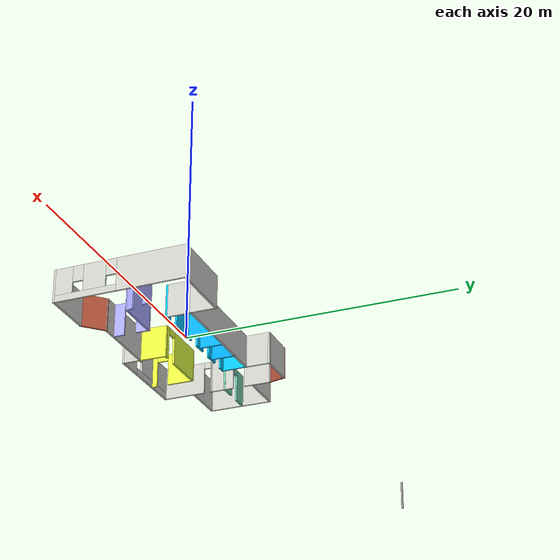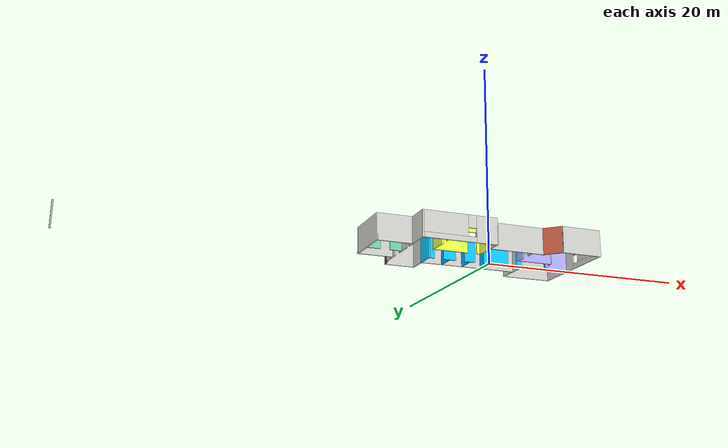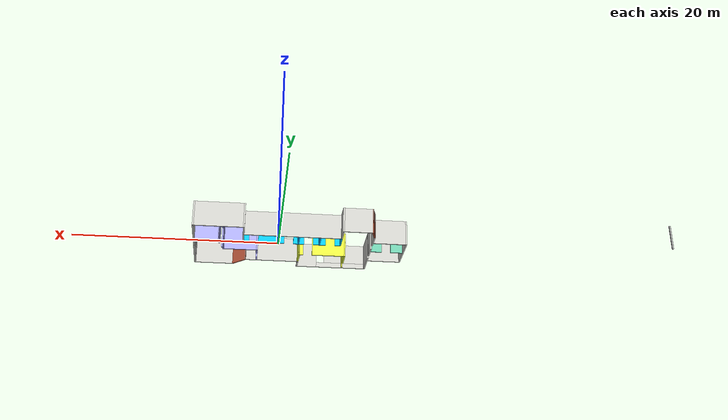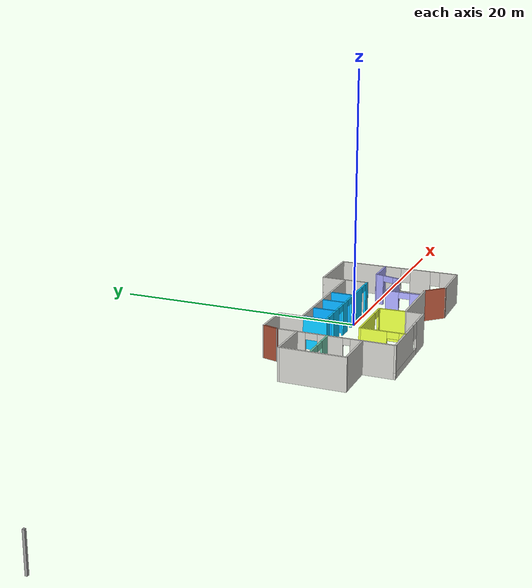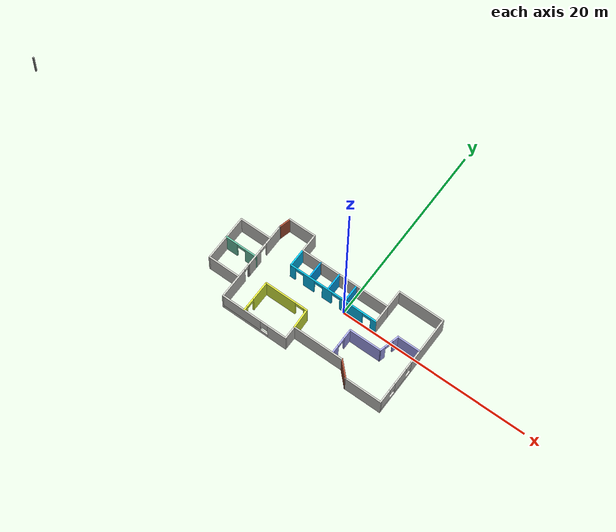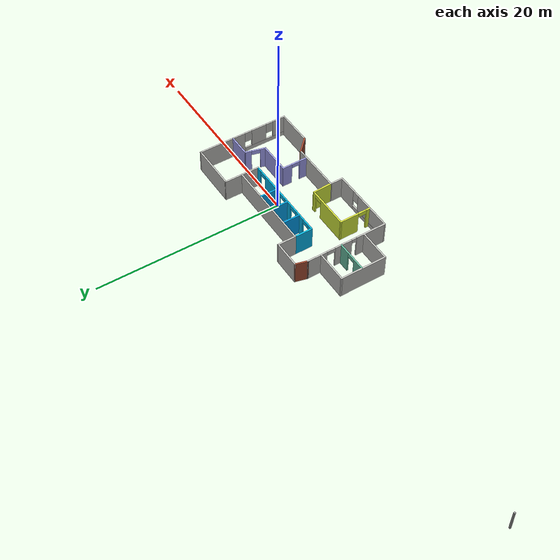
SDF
<?xml version='1.0'?>
<sdf version='1.6'>
  <model name='Building'>
    <pose frame=''>-15.5554 -1.11535 0 0 -0 0</pose>
    <link name='Wall_10'>
      <collision name='Wall_10_Collision'>
        <geometry>
          <box>
            <size>4 0.15 2.5</size>
          </box>
        </geometry>
        <pose frame=''>0 0 1.25 0 -0 0</pose>
      </collision>
      <visual name='Wall_10_Visual'>
        <pose frame=''>0 0 1.25 0 -0 0</pose>
        <geometry>
          <box>
            <size>4 0.15 2.5</size>
          </box>
        </geometry>
        <material>
          <script>
            <uri>file://media/materials/scripts/gazebo.material</uri>
            <name>Gazebo/CeilingTiled</name>
          </script>
          <ambient>1 1 1 1</ambient>
        </material>
        <meta>
          <layer>0</layer>
        </meta>
      </visual>
      <pose frame=''>21.9406 -4.91227 0 0 -0 3.14159</pose>
    </link>
    <link name='Wall_11'>
      <collision name='Wall_11_Collision'>
        <geometry>
          <box>
            <size>2 0.15 2.5</size>
          </box>
        </geometry>
        <pose frame=''>0 0 1.25 0 -0 0</pose>
      </collision>
      <visual name='Wall_11_Visual'>
        <pose frame=''>0 0 1.25 0 -0 0</pose>
        <geometry>
          <box>
            <size>2 0.15 2.5</size>
          </box>
        </geometry>
        <material>
          <script>
            <uri>file://media/materials/scripts/gazebo.material</uri>
            <name>Gazebo/Bricks</name>
          </script>
          <ambient>1 1 1 1</ambient>
        </material>
        <meta>
          <layer>0</layer>
        </meta>
      </visual>
      <pose frame=''>19.3615 -4.25819 0 0 -0 2.35619</pose>
    </link>
    <link name='Wall_12'>
      <collision name='Wall_12_Collision'>
        <geometry>
          <box>
            <size>5.5 0.15 2.5</size>
          </box>
        </geometry>
        <pose frame=''>0 0 1.25 0 -0 0</pose>
      </collision>
      <visual name='Wall_12_Visual'>
        <pose frame=''>0 0 1.25 0 -0 0</pose>
        <geometry>
          <box>
            <size>5.5 0.15 2.5</size>
          </box>
        </geometry>
        <material>
          <script>
            <uri>file://media/materials/scripts/gazebo.material</uri>
            <name>Gazebo/CeilingTiled</name>
          </script>
          <ambient>1 1 1 1</ambient>
        </material>
        <meta>
          <layer>0</layer>
        </meta>
      </visual>
      <pose frame=''>16.0324 -3.60412 0 0 -0 3.14159</pose>
    </link>
    <link name='Wall_13'>
      <collision name='Wall_13_Collision'>
        <geometry>
          <box>
            <size>1.5 0.15 2.5</size>
          </box>
        </geometry>
        <pose frame=''>0 0 1.25 0 -0 0</pose>
      </collision>
      <visual name='Wall_13_Visual'>
        <pose frame=''>0 0 1.25 0 -0 0</pose>
        <geometry>
          <box>
            <size>1.5 0.15 2.5</size>
          </box>
        </geometry>
        <material>
          <script>
            <uri>file://media/materials/scripts/gazebo.material</uri>
            <name>Gazebo/CeilingTiled</name>
          </script>
          <ambient>0.901961 1 0.254902 1</ambient>
        </material>
        <meta>
          <layer>0</layer>
        </meta>
      </visual>
      <pose frame=''>13.3574 -4.27912 0 0 0 -1.5708</pose>
    </link>
    <link name='Wall_14'>
      <pose frame=''>9.80745 -4.95412 0 0 -0 3.14159</pose>
      <visual name='Wall_14_Visual_0'>
        <pose frame=''>-2.58123 0 1.25 0 -0 0</pose>
        <geometry>
          <box>
            <size>2.08753 0.15 2.5</size>
          </box>
        </geometry>
        <material>
          <script>
            <uri>file://media/materials/scripts/gazebo.material</uri>
            <name>Gazebo/CeilingTiled</name>
          </script>
          <ambient>1 1 1 1</ambient>
        </material>
        <meta>
          <layer>0</layer>
        </meta>
      </visual>
      <collision name='Wall_14_Collision_0'>
        <geometry>
          <box>
            <size>2.08753 0.15 2.5</size>
          </box>
        </geometry>
        <pose frame=''>-2.58123 0 1.25 0 -0 0</pose>
      </collision>
      <visual name='Wall_14_Visual_1'>
        <pose frame=''>1.04377 0 0.25 0 -0 0</pose>
        <geometry>
          <box>
            <size>5.16247 0.15 0.5</size>
          </box>
        </geometry>
        <material>
          <script>
            <uri>file://media/materials/scripts/gazebo.material</uri>
            <name>Gazebo/CeilingTiled</name>
          </script>
          <ambient>1 1 1 1</ambient>
        </material>
        <meta>
          <layer>0</layer>
        </meta>
      </visual>
      <collision name='Wall_14_Collision_1'>
        <geometry>
          <box>
            <size>5.16247 0.15 0.5</size>
          </box>
        </geometry>
        <pose frame=''>1.04377 0 0.25 0 -0 0</pose>
      </collision>
      <visual name='Wall_14_Visual_2'>
        <pose frame=''>1.44377 0 1.5 0 -0 0</pose>
        <geometry>
          <box>
            <size>4.36247 0.15 2</size>
          </box>
        </geometry>
        <material>
          <script>
            <uri>file://media/materials/scripts/gazebo.material</uri>
            <name>Gazebo/CeilingTiled</name>
          </script>
          <ambient>1 1 1 1</ambient>
        </material>
        <meta>
          <layer>0</layer>
        </meta>
      </visual>
      <collision name='Wall_14_Collision_2'>
        <geometry>
          <box>
            <size>4.36247 0.15 2</size>
          </box>
        </geometry>
        <pose frame=''>1.44377 0 1.5 0 -0 0</pose>
      </collision>
      <visual name='Wall_14_Visual_3'>
        <pose frame=''>-1.13747 0 1.9 0 -0 0</pose>
        <geometry>
          <box>
            <size>0.8 0.15 1.2</size>
          </box>
        </geometry>
        <material>
          <script>
            <uri>file://media/materials/scripts/gazebo.material</uri>
            <name>Gazebo/CeilingTiled</name>
          </script>
          <ambient>1 1 1 1</ambient>
        </material>
        <meta>
          <layer>0</layer>
        </meta>
      </visual>
      <collision name='Wall_14_Collision_3'>
        <geometry>
          <box>
            <size>0.8 0.15 1.2</size>
          </box>
        </geometry>
        <pose frame=''>-1.13747 0 1.9 0 -0 0</pose>
      </collision>
    </link>
    <link name='Wall_15'>
      <pose frame=''>6.25745 -3.02912 0 0 -0 1.5708</pose>
      <visual name='Wall_15_Visual_0'>
        <pose frame=''>-0.337699 0 1.25 0 -0 0</pose>
        <geometry>
          <box>
            <size>3.3246 0.15 2.5</size>
          </box>
        </geometry>
        <material>
          <script>
            <uri>file://media/materials/scripts/gazebo.material</uri>
            <name>Gazebo/CeilingTiled</name>
          </script>
          <ambient>0.435294 0.796078 0.67451 1</ambient>
        </material>
        <meta>
          <layer>0</layer>
        </meta>
      </visual>
      <collision name='Wall_15_Collision_0'>
        <geometry>
          <box>
            <size>3.3246 0.15 2.5</size>
          </box>
        </geometry>
        <pose frame=''>-0.337699 0 1.25 0 -0 0</pose>
      </collision>
      <visual name='Wall_15_Visual_1'>
        <pose frame=''>1.6623 0 2.25 0 -0 0</pose>
        <geometry>
          <box>
            <size>0.675399 0.15 0.5</size>
          </box>
        </geometry>
        <material>
          <script>
            <uri>file://media/materials/scripts/gazebo.material</uri>
            <name>Gazebo/CeilingTiled</name>
          </script>
          <ambient>0.435294 0.796078 0.67451 1</ambient>
        </material>
        <meta>
          <layer>0</layer>
        </meta>
      </visual>
      <collision name='Wall_15_Collision_1'>
        <geometry>
          <box>
            <size>0.675399 0.15 0.5</size>
          </box>
        </geometry>
        <pose frame=''>1.6623 0 2.25 0 -0 0</pose>
      </collision>
    </link>
    <link name='Wall_19'>
      <collision name='Wall_19_Collision'>
        <geometry>
          <box>
            <size>0.15 0.15 2.5</size>
          </box>
        </geometry>
        <pose frame=''>0 0 1.25 0 -0 0</pose>
      </collision>
      <visual name='Wall_19_Visual'>
        <pose frame=''>0 0 1.25 0 -0 0</pose>
        <geometry>
          <box>
            <size>0.15 0.15 2.5</size>
          </box>
        </geometry>
        <material>
          <script>
            <uri>file://media/materials/scripts/gazebo.material</uri>
            <name>Gazebo/Grey</name>
          </script>
          <ambient>1 1 1 1</ambient>
        </material>
        <meta>
          <layer>0</layer>
        </meta>
      </visual>
      <pose frame=''>6.25745 3.74588 0 0 -0 0</pose>
    </link>
    <link name='Wall_24'>
      <collision name='Wall_24_Collision'>
        <geometry>
          <box>
            <size>0.15 0.15 2.5</size>
          </box>
        </geometry>
        <pose frame=''>0 0 1.25 0 -0 0</pose>
      </collision>
      <visual name='Wall_24_Visual'>
        <pose frame=''>0 0 1.25 0 -0 0</pose>
        <geometry>
          <box>
            <size>0.15 0.15 2.5</size>
          </box>
        </geometry>
        <material>
          <script>
            <uri>file://media/materials/scripts/gazebo.material</uri>
            <name>Gazebo/Grey</name>
          </script>
          <ambient>1 1 1 1</ambient>
        </material>
        <meta>
          <layer>0</layer>
        </meta>
      </visual>
      <pose frame=''>-23.8656 4.2525 0 0 -0 0</pose>
    </link>
    <link name='Wall_26'>
      <collision name='Wall_26_Collision'>
        <geometry>
          <box>
            <size>3 0.15 2.5</size>
          </box>
        </geometry>
        <pose frame=''>0 0 1.25 0 -0 0</pose>
      </collision>
      <visual name='Wall_26_Visual'>
        <pose frame=''>0 0 1.25 0 -0 0</pose>
        <geometry>
          <box>
            <size>3 0.15 2.5</size>
          </box>
        </geometry>
        <material>
          <script>
            <uri>file://media/materials/scripts/gazebo.material</uri>
            <name>Gazebo/CeilingTiled</name>
          </script>
          <ambient>0.435294 0.796078 0.67451 1</ambient>
        </material>
        <meta>
          <layer>0</layer>
        </meta>
      </visual>
      <pose frame=''>7.99059 4.93773 0 0 -0 3.14159</pose>
    </link>
    <link name='Wall_27'>
      <collision name='Wall_27_Collision'>
        <geometry>
          <box>
            <size>1.38104 0.15 2.5</size>
          </box>
        </geometry>
        <pose frame=''>0 0 1.25 0 -0 0</pose>
      </collision>
      <visual name='Wall_27_Visual'>
        <pose frame=''>0 0 1.25 0 -0 0</pose>
        <geometry>
          <box>
            <size>1.38104 0.15 2.5</size>
          </box>
        </geometry>
        <material>
          <script>
            <uri>file://media/materials/scripts/gazebo.material</uri>
            <name>Gazebo/Bricks</name>
          </script>
          <ambient>0.435294 0.796078 0.67451 1</ambient>
        </material>
        <meta>
          <layer>0</layer>
        </meta>
      </visual>
      <pose frame=''>6.41152 4.34181 0 0 0 -1.8238</pose>
    </link>
    <link name='Wall_28'>
      <collision name='Wall_28_Collision'>
        <geometry>
          <box>
            <size>0.16 0.15 2.5</size>
          </box>
        </geometry>
        <pose frame=''>0 0 1.25 0 -0 0</pose>
      </collision>
      <visual name='Wall_28_Visual'>
        <pose frame=''>0 0 1.25 0 -0 0</pose>
        <geometry>
          <box>
            <size>0.16 0.15 2.5</size>
          </box>
        </geometry>
        <material>
          <script>
            <uri>file://media/materials/scripts/gazebo.material</uri>
            <name>Gazebo/Grey</name>
          </script>
          <ambient>1 1 1 1</ambient>
        </material>
        <meta>
          <layer>0</layer>
        </meta>
      </visual>
      <pose frame=''>6.26245 3.74588 0 0 -0 0</pose>
    </link>
    <link name='Wall_3'>
      <collision name='Wall_3_Collision'>
        <geometry>
          <box>
            <size>2.00019 0.15 2.5</size>
          </box>
        </geometry>
        <pose frame=''>0 0 1.25 0 -0 0</pose>
      </collision>
      <visual name='Wall_3_Visual'>
        <pose frame=''>0 0 1.25 0 -0 0</pose>
        <geometry>
          <box>
            <size>2.00019 0.15 2.5</size>
          </box>
        </geometry>
        <material>
          <script>
            <uri>file://media/materials/scripts/gazebo.material</uri>
            <name>Gazebo/CeilingTiled</name>
          </script>
          <ambient>1 1 1 1</ambient>
        </material>
        <meta>
          <layer>0</layer>
        </meta>
      </visual>
      <pose frame=''>9.41559 4.01273 0 0 0 -1.5708</pose>
    </link>
    <link name='Wall_30'>
      <pose frame=''>6.25745 1.32088 0 0 0 -1.5708</pose>
      <visual name='Wall_30_Visual_0'>
        <pose frame=''>-1.39411 0 1.25 0 -0 0</pose>
        <geometry>
          <box>
            <size>2.21177 0.15 2.5</size>
          </box>
        </geometry>
        <material>
          <script>
            <uri>file://media/materials/scripts/gazebo.material</uri>
            <name>Gazebo/CeilingTiled</name>
          </script>
          <ambient>0.435294 0.796078 0.67451 1</ambient>
        </material>
        <meta>
          <layer>0</layer>
        </meta>
      </visual>
      <collision name='Wall_30_Collision_0'>
        <geometry>
          <box>
            <size>2.21177 0.15 2.5</size>
          </box>
        </geometry>
        <pose frame=''>-1.39411 0 1.25 0 -0 0</pose>
      </collision>
      <visual name='Wall_30_Visual_1'>
        <pose frame=''>1.55588 0 1.25 0 -0 0</pose>
        <geometry>
          <box>
            <size>1.88823 0.15 2.5</size>
          </box>
        </geometry>
        <material>
          <script>
            <uri>file://media/materials/scripts/gazebo.material</uri>
            <name>Gazebo/CeilingTiled</name>
          </script>
          <ambient>0.435294 0.796078 0.67451 1</ambient>
        </material>
        <meta>
          <layer>0</layer>
        </meta>
      </visual>
      <collision name='Wall_30_Collision_1'>
        <geometry>
          <box>
            <size>1.88823 0.15 2.5</size>
          </box>
        </geometry>
        <pose frame=''>1.55588 0 1.25 0 -0 0</pose>
      </collision>
      <visual name='Wall_30_Visual_2'>
        <pose frame=''>0.16177 0 2.25 0 -0 0</pose>
        <geometry>
          <box>
            <size>0.9 0.15 0.5</size>
          </box>
        </geometry>
        <material>
          <script>
            <uri>file://media/materials/scripts/gazebo.material</uri>
            <name>Gazebo/CeilingTiled</name>
          </script>
          <ambient>0.435294 0.796078 0.67451 1</ambient>
        </material>
        <meta>
          <layer>0</layer>
        </meta>
      </visual>
      <collision name='Wall_30_Collision_2'>
        <geometry>
          <box>
            <size>0.9 0.15 0.5</size>
          </box>
        </geometry>
        <pose frame=''>0.16177 0 2.25 0 -0 0</pose>
      </collision>
    </link>
    <link name='Wall_31'>
      <collision name='Wall_31_Collision'>
        <geometry>
          <box>
            <size>0.15 0.15 2.5</size>
          </box>
        </geometry>
        <pose frame=''>0 0 1.25 0 -0 0</pose>
      </collision>
      <visual name='Wall_31_Visual'>
        <pose frame=''>0 0 1.25 0 -0 0</pose>
        <geometry>
          <box>
            <size>0.15 0.15 2.5</size>
          </box>
        </geometry>
        <material>
          <script>
            <uri>file://media/materials/scripts/gazebo.material</uri>
            <name>Gazebo/Grey</name>
          </script>
          <ambient>1 1 1 1</ambient>
        </material>
        <meta>
          <layer>0</layer>
        </meta>
      </visual>
      <pose frame=''>6.25745 -1.10412 0 0 -0 0</pose>
    </link>
    <link name='Wall_4'>
      <collision name='Wall_4_Collision'>
        <geometry>
          <box>
            <size>9.75 0.15 2.5</size>
          </box>
        </geometry>
        <pose frame=''>0 0 1.25 0 -0 0</pose>
      </collision>
      <visual name='Wall_4_Visual'>
        <pose frame=''>0 0 1.25 0 -0 0</pose>
        <geometry>
          <box>
            <size>9.75 0.15 2.5</size>
          </box>
        </geometry>
        <material>
          <script>
            <uri>file://media/materials/scripts/gazebo.material</uri>
            <name>Gazebo/CeilingTiled</name>
          </script>
          <ambient>0.0196078 0.690196 1 1</ambient>
        </material>
        <meta>
          <layer>0</layer>
        </meta>
      </visual>
      <pose frame=''>14.2156 3.08773 0 0 -0 0</pose>
    </link>
    <link name='Wall_40'>
      <collision name='Wall_40_Collision'>
        <geometry>
          <box>
            <size>3.5 0.15 2.5</size>
          </box>
        </geometry>
        <pose frame=''>0 0 1.25 0 -0 0</pose>
      </collision>
      <visual name='Wall_40_Visual'>
        <pose frame=''>0 0 1.25 0 -0 0</pose>
        <geometry>
          <box>
            <size>3.5 0.15 2.5</size>
          </box>
        </geometry>
        <material>
          <script>
            <uri>file://media/materials/scripts/gazebo.material</uri>
            <name>Gazebo/CeilingTiled</name>
          </script>
          <ambient>0.435294 0.796078 0.67451 1</ambient>
        </material>
        <meta>
          <layer>0</layer>
        </meta>
      </visual>
      <pose frame=''>4.56509 2.27847 0 0 -0 3.14159</pose>
    </link>
    <link name='Wall_41'>
      <collision name='Wall_41_Collision'>
        <geometry>
          <box>
            <size>5 0.15 2.5</size>
          </box>
        </geometry>
        <pose frame=''>0 0 1.25 0 -0 0</pose>
      </collision>
      <visual name='Wall_41_Visual'>
        <pose frame=''>0 0 1.25 0 -0 0</pose>
        <geometry>
          <box>
            <size>5 0.15 2.5</size>
          </box>
        </geometry>
        <material>
          <script>
            <uri>file://media/materials/scripts/gazebo.material</uri>
            <name>Gazebo/CeilingTiled</name>
          </script>
          <ambient>1 1 1 1</ambient>
        </material>
        <meta>
          <layer>0</layer>
        </meta>
      </visual>
      <pose frame=''>2.89009 -0.146525 0 0 0 -1.5708</pose>
    </link>
    <link name='Wall_42'>
      <collision name='Wall_42_Collision'>
        <geometry>
          <box>
            <size>3.5 0.15 2.5</size>
          </box>
        </geometry>
        <pose frame=''>0 0 1.25 0 -0 0</pose>
      </collision>
      <visual name='Wall_42_Visual'>
        <pose frame=''>0 0 1.25 0 -0 0</pose>
        <geometry>
          <box>
            <size>3.5 0.15 2.5</size>
          </box>
        </geometry>
        <material>
          <script>
            <uri>file://media/materials/scripts/gazebo.material</uri>
            <name>Gazebo/CeilingTiled</name>
          </script>
          <ambient>0.435294 0.796078 0.67451 1</ambient>
        </material>
        <meta>
          <layer>0</layer>
        </meta>
      </visual>
      <pose frame=''>4.56509 -2.57152 0 0 -0 0</pose>
    </link>
    <link name='Wall_44'>
      <pose frame=''>4.59198 0.004767 0 0 -0 0</pose>
      <visual name='Wall_44_Visual_0'>
        <pose frame=''>-1.08923 0 1.25 0 -0 0</pose>
        <geometry>
          <box>
            <size>1.32154 0.15 2.5</size>
          </box>
        </geometry>
        <material>
          <script>
            <uri>file://media/materials/scripts/gazebo.material</uri>
            <name>Gazebo/Grey</name>
          </script>
          <ambient>0.435294 0.796078 0.67451 1</ambient>
        </material>
        <meta>
          <layer>0</layer>
        </meta>
      </visual>
      <collision name='Wall_44_Collision_0'>
        <geometry>
          <box>
            <size>1.32154 0.15 2.5</size>
          </box>
        </geometry>
        <pose frame=''>-1.08923 0 1.25 0 -0 0</pose>
      </collision>
      <visual name='Wall_44_Visual_1'>
        <pose frame=''>1.11077 0 1.25 0 -0 0</pose>
        <geometry>
          <box>
            <size>1.27846 0.15 2.5</size>
          </box>
        </geometry>
        <material>
          <script>
            <uri>file://media/materials/scripts/gazebo.material</uri>
            <name>Gazebo/Grey</name>
          </script>
          <ambient>0.435294 0.796078 0.67451 1</ambient>
        </material>
        <meta>
          <layer>0</layer>
        </meta>
      </visual>
      <collision name='Wall_44_Collision_1'>
        <geometry>
          <box>
            <size>1.27846 0.15 2.5</size>
          </box>
        </geometry>
        <pose frame=''>1.11077 0 1.25 0 -0 0</pose>
      </collision>
      <visual name='Wall_44_Visual_2'>
        <pose frame=''>0.021536 0 2.25 0 -0 0</pose>
        <geometry>
          <box>
            <size>0.9 0.15 0.5</size>
          </box>
        </geometry>
        <material>
          <script>
            <uri>file://media/materials/scripts/gazebo.material</uri>
            <name>Gazebo/Grey</name>
          </script>
          <ambient>0.435294 0.796078 0.67451 1</ambient>
        </material>
        <meta>
          <layer>0</layer>
        </meta>
      </visual>
      <collision name='Wall_44_Collision_2'>
        <geometry>
          <box>
            <size>0.9 0.15 0.5</size>
          </box>
        </geometry>
        <pose frame=''>0.021536 0 2.25 0 -0 0</pose>
      </collision>
    </link>
    <link name='Wall_46'>
      <collision name='Wall_46_Collision'>
        <geometry>
          <box>
            <size>2 0.15 2.5</size>
          </box>
        </geometry>
        <pose frame=''>0 0 1.25 0 -0 0</pose>
      </collision>
      <visual name='Wall_46_Visual'>
        <pose frame=''>0 0 1.25 0 -0 0</pose>
        <geometry>
          <box>
            <size>2 0.15 2.5</size>
          </box>
        </geometry>
        <material>
          <script>
            <uri>file://media/materials/scripts/gazebo.material</uri>
            <name>Gazebo/Grey</name>
          </script>
          <ambient>0.0313726 0.776471 1 1</ambient>
        </material>
        <meta>
          <layer>0</layer>
        </meta>
      </visual>
      <pose frame=''>9.41559 2.16273 0 0 0 -1.5708</pose>
    </link>
    <link name='Wall_47'>
      <pose frame=''>14.2156 1.23773 0 0 -0 0</pose>
      <visual name='Wall_47_Visual_0'>
        <pose frame=''>-4.56019 0 1.25 0 -0 0</pose>
        <geometry>
          <box>
            <size>0.629619 0.15 2.5</size>
          </box>
        </geometry>
        <material>
          <script>
            <uri>file://media/materials/scripts/gazebo.material</uri>
            <name>Gazebo/Grey</name>
          </script>
          <ambient>0.0313726 0.776471 1 1</ambient>
        </material>
        <meta>
          <layer>0</layer>
        </meta>
      </visual>
      <collision name='Wall_47_Collision_0'>
        <geometry>
          <box>
            <size>0.629619 0.15 2.5</size>
          </box>
        </geometry>
        <pose frame=''>-4.56019 0 1.25 0 -0 0</pose>
      </collision>
      <visual name='Wall_47_Visual_1'>
        <pose frame=''>-2.72849 0 1.25 0 -0 0</pose>
        <geometry>
          <box>
            <size>1.23379 0.15 2.5</size>
          </box>
        </geometry>
        <material>
          <script>
            <uri>file://media/materials/scripts/gazebo.material</uri>
            <name>Gazebo/Grey</name>
          </script>
          <ambient>0.0313726 0.776471 1 1</ambient>
        </material>
        <meta>
          <layer>0</layer>
        </meta>
      </visual>
      <collision name='Wall_47_Collision_1'>
        <geometry>
          <box>
            <size>1.23379 0.15 2.5</size>
          </box>
        </geometry>
        <pose frame=''>-2.72849 0 1.25 0 -0 0</pose>
      </collision>
      <visual name='Wall_47_Visual_2'>
        <pose frame=''>-0.673405 0 1.25 0 -0 0</pose>
        <geometry>
          <box>
            <size>1.07638 0.15 2.5</size>
          </box>
        </geometry>
        <material>
          <script>
            <uri>file://media/materials/scripts/gazebo.material</uri>
            <name>Gazebo/Grey</name>
          </script>
          <ambient>0.0313726 0.776471 1 1</ambient>
        </material>
        <meta>
          <layer>0</layer>
        </meta>
      </visual>
      <collision name='Wall_47_Collision_2'>
        <geometry>
          <box>
            <size>1.07638 0.15 2.5</size>
          </box>
        </geometry>
        <pose frame=''>-0.673405 0 1.25 0 -0 0</pose>
      </collision>
      <visual name='Wall_47_Visual_3'>
        <pose frame=''>2.0463 0 1.25 0 -0 0</pose>
        <geometry>
          <box>
            <size>2.56303 0.15 2.5</size>
          </box>
        </geometry>
        <material>
          <script>
            <uri>file://media/materials/scripts/gazebo.material</uri>
            <name>Gazebo/Grey</name>
          </script>
          <ambient>0.0313726 0.776471 1 1</ambient>
        </material>
        <meta>
          <layer>0</layer>
        </meta>
      </visual>
      <collision name='Wall_47_Collision_3'>
        <geometry>
          <box>
            <size>2.56303 0.15 2.5</size>
          </box>
        </geometry>
        <pose frame=''>2.0463 0 1.25 0 -0 0</pose>
      </collision>
      <visual name='Wall_47_Visual_4'>
        <pose frame=''>4.55141 0 1.25 0 -0 0</pose>
        <geometry>
          <box>
            <size>0.647184 0.15 2.5</size>
          </box>
        </geometry>
        <material>
          <script>
            <uri>file://media/materials/scripts/gazebo.material</uri>
            <name>Gazebo/Grey</name>
          </script>
          <ambient>0.0313726 0.776471 1 1</ambient>
        </material>
        <meta>
          <layer>0</layer>
        </meta>
      </visual>
      <collision name='Wall_47_Collision_4'>
        <geometry>
          <box>
            <size>0.647184 0.15 2.5</size>
          </box>
        </geometry>
        <pose frame=''>4.55141 0 1.25 0 -0 0</pose>
      </collision>
      <visual name='Wall_47_Visual_5'>
        <pose frame=''>-3.79538 0 2.25 0 -0 0</pose>
        <geometry>
          <box>
            <size>0.9 0.15 0.5</size>
          </box>
        </geometry>
        <material>
          <script>
            <uri>file://media/materials/scripts/gazebo.material</uri>
            <name>Gazebo/Grey</name>
          </script>
          <ambient>0.0313726 0.776471 1 1</ambient>
        </material>
        <meta>
          <layer>0</layer>
        </meta>
      </visual>
      <collision name='Wall_47_Collision_5'>
        <geometry>
          <box>
            <size>0.9 0.15 0.5</size>
          </box>
        </geometry>
        <pose frame=''>-3.79538 0 2.25 0 -0 0</pose>
      </collision>
      <visual name='Wall_47_Visual_6'>
        <pose frame=''>-1.66159 0 2.25 0 -0 0</pose>
        <geometry>
          <box>
            <size>0.9 0.15 0.5</size>
          </box>
        </geometry>
        <material>
          <script>
            <uri>file://media/materials/scripts/gazebo.material</uri>
            <name>Gazebo/Grey</name>
          </script>
          <ambient>0.0313726 0.776471 1 1</ambient>
        </material>
        <meta>
          <layer>0</layer>
        </meta>
      </visual>
      <collision name='Wall_47_Collision_6'>
        <geometry>
          <box>
            <size>0.9 0.15 0.5</size>
          </box>
        </geometry>
        <pose frame=''>-1.66159 0 2.25 0 -0 0</pose>
      </collision>
      <visual name='Wall_47_Visual_7'>
        <pose frame=''>0.314784 0 2.25 0 -0 0</pose>
        <geometry>
          <box>
            <size>0.9 0.15 0.5</size>
          </box>
        </geometry>
        <material>
          <script>
            <uri>file://media/materials/scripts/gazebo.material</uri>
            <name>Gazebo/Grey</name>
          </script>
          <ambient>0.0313726 0.776471 1 1</ambient>
        </material>
        <meta>
          <layer>0</layer>
        </meta>
      </visual>
      <collision name='Wall_47_Collision_7'>
        <geometry>
          <box>
            <size>0.9 0.15 0.5</size>
          </box>
        </geometry>
        <pose frame=''>0.314784 0 2.25 0 -0 0</pose>
      </collision>
      <visual name='Wall_47_Visual_8'>
        <pose frame=''>3.77782 0 2.25 0 -0 0</pose>
        <geometry>
          <box>
            <size>0.9 0.15 0.5</size>
          </box>
        </geometry>
        <material>
          <script>
            <uri>file://media/materials/scripts/gazebo.material</uri>
            <name>Gazebo/Grey</name>
          </script>
          <ambient>0.0313726 0.776471 1 1</ambient>
        </material>
        <meta>
          <layer>0</layer>
        </meta>
      </visual>
      <collision name='Wall_47_Collision_8'>
        <geometry>
          <box>
            <size>0.9 0.15 0.5</size>
          </box>
        </geometry>
        <pose frame=''>3.77782 0 2.25 0 -0 0</pose>
      </collision>
    </link>
    <link name='Wall_48'>
      <collision name='Wall_48_Collision'>
        <geometry>
          <box>
            <size>2 0.15 2.5</size>
          </box>
        </geometry>
        <pose frame=''>0 0 1.25 0 -0 0</pose>
      </collision>
      <visual name='Wall_48_Visual'>
        <pose frame=''>0 0 1.25 0 -0 0</pose>
        <geometry>
          <box>
            <size>2 0.15 2.5</size>
          </box>
        </geometry>
        <material>
          <script>
            <uri>file://media/materials/scripts/gazebo.material</uri>
            <name>Gazebo/CeilingTiled</name>
          </script>
          <ambient>0.0470588 0.745098 1 1</ambient>
        </material>
        <meta>
          <layer>0</layer>
        </meta>
      </visual>
      <pose frame=''>19.0156 2.16273 0 0 -0 1.5708</pose>
    </link>
    <link name='Wall_52'>
      <collision name='Wall_52_Collision'>
        <geometry>
          <box>
            <size>1.8816 0.15 2.5</size>
          </box>
        </geometry>
        <pose frame=''>0 0 1.25 0 -0 0</pose>
      </collision>
      <visual name='Wall_52_Visual'>
        <pose frame=''>0 0 1.25 0 -0 0</pose>
        <geometry>
          <box>
            <size>1.8816 0.15 2.5</size>
          </box>
        </geometry>
        <material>
          <script>
            <uri>file://media/materials/scripts/gazebo.material</uri>
            <name>Gazebo/Grey</name>
          </script>
          <ambient>0 0.666667 1 1</ambient>
        </material>
        <meta>
          <layer>0</layer>
        </meta>
      </visual>
      <pose frame=''>11.5046 2.1473 0 0 -0 1.5708</pose>
    </link>
    <link name='Wall_53'>
      <collision name='Wall_53_Collision'>
        <geometry>
          <box>
            <size>0.15 0.15 2.5</size>
          </box>
        </geometry>
        <pose frame=''>0 0 1.25 0 -0 0</pose>
      </collision>
      <visual name='Wall_53_Visual'>
        <pose frame=''>0 0 1.25 0 -0 0</pose>
        <geometry>
          <box>
            <size>0.15 0.15 2.5</size>
          </box>
        </geometry>
        <material>
          <script>
            <uri>file://media/materials/scripts/gazebo.material</uri>
            <name>Gazebo/Grey</name>
          </script>
          <ambient>1 1 1 1</ambient>
        </material>
        <meta>
          <layer>0</layer>
        </meta>
      </visual>
      <pose frame=''>11.5046 3.01306 0 0 -0 0</pose>
    </link>
    <link name='Wall_54'>
      <collision name='Wall_54_Collision'>
        <geometry>
          <box>
            <size>0.15 0.15 2.5</size>
          </box>
        </geometry>
        <pose frame=''>0 0 1.25 0 -0 0</pose>
      </collision>
      <visual name='Wall_54_Visual'>
        <pose frame=''>0 0 1.25 0 -0 0</pose>
        <geometry>
          <box>
            <size>0.15 0.15 2.5</size>
          </box>
        </geometry>
        <material>
          <script>
            <uri>file://media/materials/scripts/gazebo.material</uri>
            <name>Gazebo/Grey</name>
          </script>
          <ambient>1 1 1 1</ambient>
        </material>
        <meta>
          <layer>0</layer>
        </meta>
      </visual>
      <pose frame=''>11.5046 3.01306 0 0 -0 0</pose>
    </link>
    <link name='Wall_56'>
      <collision name='Wall_56_Collision'>
        <geometry>
          <box>
            <size>1.86438 0.15 2.5</size>
          </box>
        </geometry>
        <pose frame=''>0 0 1.25 0 -0 0</pose>
      </collision>
      <visual name='Wall_56_Visual'>
        <pose frame=''>0 0 1.25 0 -0 0</pose>
        <geometry>
          <box>
            <size>1.86438 0.15 2.5</size>
          </box>
        </geometry>
        <material>
          <script>
            <uri>file://media/materials/scripts/gazebo.material</uri>
            <name>Gazebo/Grey</name>
          </script>
          <ambient>0.0196078 0.690196 1 1</ambient>
        </material>
        <meta>
          <layer>0</layer>
        </meta>
      </visual>
      <pose frame=''>13.5859 2.19102 0 0 0 -1.5708</pose>
    </link>
    <link name='Wall_58'>
      <collision name='Wall_58_Collision'>
        <geometry>
          <box>
            <size>1.89936 0.15 2.5</size>
          </box>
        </geometry>
        <pose frame=''>0 0 1.25 0 -0 0</pose>
      </collision>
      <visual name='Wall_58_Visual'>
        <pose frame=''>0 0 1.25 0 -0 0</pose>
        <geometry>
          <box>
            <size>1.89936 0.15 2.5</size>
          </box>
        </geometry>
        <material>
          <script>
            <uri>file://media/materials/scripts/gazebo.material</uri>
            <name>Gazebo/Grey</name>
          </script>
          <ambient>0.0196078 0.690196 1 1</ambient>
        </material>
        <meta>
          <layer>0</layer>
        </meta>
      </visual>
      <pose frame=''>15.5273 2.19102 0 0 0 -1.5708</pose>
    </link>
    <link name='Wall_60'>
      <collision name='Wall_60_Collision'>
        <geometry>
          <box>
            <size>2.5 0.15 2.5</size>
          </box>
        </geometry>
        <pose frame=''>0 0 1.25 0 -0 0</pose>
      </collision>
      <visual name='Wall_60_Visual'>
        <pose frame=''>0 0 1.25 0 -0 0</pose>
        <geometry>
          <box>
            <size>2.5 0.15 2.5</size>
          </box>
        </geometry>
        <material>
          <script>
            <uri>file://media/materials/scripts/gazebo.material</uri>
            <name>Gazebo/Grey</name>
          </script>
          <ambient>0.666667 0.666667 1 1</ambient>
        </material>
        <meta>
          <layer>0</layer>
        </meta>
      </visual>
      <pose frame=''>22.6776 1.19409 0 0 -0 3.14159</pose>
    </link>
    <link name='Wall_61'>
      <pose frame=''>21.2308 0.179869 0 0 0 -1.8326</pose>
      <visual name='Wall_61_Visual_0'>
        <pose frame=''>-0.761229 0 1.25 0 -0 0</pose>
        <geometry>
          <box>
            <size>0.727543 0.15 2.5</size>
          </box>
        </geometry>
        <material>
          <script>
            <uri>file://media/materials/scripts/gazebo.material</uri>
            <name>Gazebo/Grey</name>
          </script>
          <ambient>0.666667 0.666667 1 1</ambient>
        </material>
        <meta>
          <layer>0</layer>
        </meta>
      </visual>
      <collision name='Wall_61_Collision_0'>
        <geometry>
          <box>
            <size>0.727543 0.15 2.5</size>
          </box>
        </geometry>
        <pose frame=''>-0.761229 0 1.25 0 -0 0</pose>
      </collision>
      <visual name='Wall_61_Visual_1'>
        <pose frame=''>0.813771 0 1.25 0 -0 0</pose>
        <geometry>
          <box>
            <size>0.622457 0.15 2.5</size>
          </box>
        </geometry>
        <material>
          <script>
            <uri>file://media/materials/scripts/gazebo.material</uri>
            <name>Gazebo/Grey</name>
          </script>
          <ambient>0.666667 0.666667 1 1</ambient>
        </material>
        <meta>
          <layer>0</layer>
        </meta>
      </visual>
      <collision name='Wall_61_Collision_1'>
        <geometry>
          <box>
            <size>0.622457 0.15 2.5</size>
          </box>
        </geometry>
        <pose frame=''>0.813771 0 1.25 0 -0 0</pose>
      </collision>
      <visual name='Wall_61_Visual_2'>
        <pose frame=''>0.052543 0 2.25 0 -0 0</pose>
        <geometry>
          <box>
            <size>0.9 0.15 0.5</size>
          </box>
        </geometry>
        <material>
          <script>
            <uri>file://media/materials/scripts/gazebo.material</uri>
            <name>Gazebo/Grey</name>
          </script>
          <ambient>0.666667 0.666667 1 1</ambient>
        </material>
        <meta>
          <layer>0</layer>
        </meta>
      </visual>
      <collision name='Wall_61_Collision_2'>
        <geometry>
          <box>
            <size>0.9 0.15 0.5</size>
          </box>
        </geometry>
        <pose frame=''>0.052543 0 2.25 0 -0 0</pose>
      </collision>
    </link>
    <link name='Wall_62'>
      <collision name='Wall_62_Collision'>
        <geometry>
          <box>
            <size>3.5 0.15 2.5</size>
          </box>
        </geometry>
        <pose frame=''>0 0 1.25 0 -0 0</pose>
      </collision>
      <visual name='Wall_62_Visual'>
        <pose frame=''>0 0 1.25 0 -0 0</pose>
        <geometry>
          <box>
            <size>3.5 0.15 2.5</size>
          </box>
        </geometry>
        <material>
          <script>
            <uri>file://media/materials/scripts/gazebo.material</uri>
            <name>Gazebo/Grey</name>
          </script>
          <ambient>0.666667 0.666667 1 1</ambient>
        </material>
        <meta>
          <layer>0</layer>
        </meta>
      </visual>
      <pose frame=''>19.2841 -0.834353 0 0 -0 3.14159</pose>
    </link>
    <link name='Wall_63'>
      <pose frame=''>17.6088 -2.1638 0 0 0 -1.57096</pose>
      <visual name='Wall_63_Visual_0'>
        <pose frame=''>-0.874701 0 1.25 0 -0 0</pose>
        <geometry>
          <box>
            <size>1.05971 0.15 2.5</size>
          </box>
        </geometry>
        <material>
          <script>
            <uri>file://media/materials/scripts/gazebo.material</uri>
            <name>Gazebo/Grey</name>
          </script>
          <ambient>0.666667 0.666667 1 1</ambient>
        </material>
        <meta>
          <layer>0</layer>
        </meta>
      </visual>
      <collision name='Wall_63_Collision_0'>
        <geometry>
          <box>
            <size>1.05971 0.15 2.5</size>
          </box>
        </geometry>
        <pose frame=''>-0.874701 0 1.25 0 -0 0</pose>
      </collision>
      <visual name='Wall_63_Visual_1'>
        <pose frame=''>0.979857 0 1.25 0 -0 0</pose>
        <geometry>
          <box>
            <size>0.849402 0.15 2.5</size>
          </box>
        </geometry>
        <material>
          <script>
            <uri>file://media/materials/scripts/gazebo.material</uri>
            <name>Gazebo/Grey</name>
          </script>
          <ambient>0.666667 0.666667 1 1</ambient>
        </material>
        <meta>
          <layer>0</layer>
        </meta>
      </visual>
      <collision name='Wall_63_Collision_1'>
        <geometry>
          <box>
            <size>0.849402 0.15 2.5</size>
          </box>
        </geometry>
        <pose frame=''>0.979857 0 1.25 0 -0 0</pose>
      </collision>
      <visual name='Wall_63_Visual_2'>
        <pose frame=''>0.105156 0 2.25 0 -0 0</pose>
        <geometry>
          <box>
            <size>0.9 0.15 0.5</size>
          </box>
        </geometry>
        <material>
          <script>
            <uri>file://media/materials/scripts/gazebo.material</uri>
            <name>Gazebo/Grey</name>
          </script>
          <ambient>0.666667 0.666667 1 1</ambient>
        </material>
        <meta>
          <layer>0</layer>
        </meta>
      </visual>
      <collision name='Wall_63_Collision_2'>
        <geometry>
          <box>
            <size>0.9 0.15 0.5</size>
          </box>
        </geometry>
        <pose frame=''>0.105156 0 2.25 0 -0 0</pose>
      </collision>
    </link>
    <link name='Wall_65'>
      <pose frame=''>8.67121 -3.26992 0 0 -0 1.5708</pose>
      <visual name='Wall_65_Visual_0'>
        <pose frame=''>-1.4915 0 1.25 0 -0 0</pose>
        <geometry>
          <box>
            <size>0.516993 0.15 2.5</size>
          </box>
        </geometry>
        <material>
          <script>
            <uri>file://media/materials/scripts/gazebo.material</uri>
            <name>Gazebo/Grey</name>
          </script>
          <ambient>0.901961 1 0.254902 1</ambient>
        </material>
        <meta>
          <layer>0</layer>
        </meta>
      </visual>
      <collision name='Wall_65_Collision_0'>
        <geometry>
          <box>
            <size>0.516993 0.15 2.5</size>
          </box>
        </geometry>
        <pose frame=''>-1.4915 0 1.25 0 -0 0</pose>
      </collision>
      <visual name='Wall_65_Visual_1'>
        <pose frame=''>0.708497 0 1.25 0 -0 0</pose>
        <geometry>
          <box>
            <size>2.08301 0.15 2.5</size>
          </box>
        </geometry>
        <material>
          <script>
            <uri>file://media/materials/scripts/gazebo.material</uri>
            <name>Gazebo/Grey</name>
          </script>
          <ambient>0.901961 1 0.254902 1</ambient>
        </material>
        <meta>
          <layer>0</layer>
        </meta>
      </visual>
      <collision name='Wall_65_Collision_1'>
        <geometry>
          <box>
            <size>2.08301 0.15 2.5</size>
          </box>
        </geometry>
        <pose frame=''>0.708497 0 1.25 0 -0 0</pose>
      </collision>
      <visual name='Wall_65_Visual_2'>
        <pose frame=''>-0.783007 0 2.25 0 -0 0</pose>
        <geometry>
          <box>
            <size>0.9 0.15 0.5</size>
          </box>
        </geometry>
        <material>
          <script>
            <uri>file://media/materials/scripts/gazebo.material</uri>
            <name>Gazebo/Grey</name>
          </script>
          <ambient>0.901961 1 0.254902 1</ambient>
        </material>
        <meta>
          <layer>0</layer>
        </meta>
      </visual>
      <collision name='Wall_65_Collision_2'>
        <geometry>
          <box>
            <size>0.9 0.15 0.5</size>
          </box>
        </geometry>
        <pose frame=''>-0.783007 0 2.25 0 -0 0</pose>
      </collision>
    </link>
    <link name='Wall_66'>
      <pose frame=''>10.9712 -1.59492 0 0 -0 0</pose>
      <visual name='Wall_66_Visual_0'>
        <pose frame=''>-0.664828 0 1.25 0 -0 0</pose>
        <geometry>
          <box>
            <size>3.42034 0.15 2.5</size>
          </box>
        </geometry>
        <material>
          <script>
            <uri>file://media/materials/scripts/gazebo.material</uri>
            <name>Gazebo/Grey</name>
          </script>
          <ambient>0.901961 1 0.254902 1</ambient>
        </material>
        <meta>
          <layer>0</layer>
        </meta>
      </visual>
      <collision name='Wall_66_Collision_0'>
        <geometry>
          <box>
            <size>3.42034 0.15 2.5</size>
          </box>
        </geometry>
        <pose frame=''>-0.664828 0 1.25 0 -0 0</pose>
      </collision>
      <visual name='Wall_66_Visual_1'>
        <pose frame=''>2.16017 0 1.25 0 -0 0</pose>
        <geometry>
          <box>
            <size>0.429656 0.15 2.5</size>
          </box>
        </geometry>
        <material>
          <script>
            <uri>file://media/materials/scripts/gazebo.material</uri>
            <name>Gazebo/Grey</name>
          </script>
          <ambient>0.901961 1 0.254902 1</ambient>
        </material>
        <meta>
          <layer>0</layer>
        </meta>
      </visual>
      <collision name='Wall_66_Collision_1'>
        <geometry>
          <box>
            <size>0.429656 0.15 2.5</size>
          </box>
        </geometry>
        <pose frame=''>2.16017 0 1.25 0 -0 0</pose>
      </collision>
      <visual name='Wall_66_Visual_2'>
        <pose frame=''>1.49534 0 2.25 0 -0 0</pose>
        <geometry>
          <box>
            <size>0.9 0.15 0.5</size>
          </box>
        </geometry>
        <material>
          <script>
            <uri>file://media/materials/scripts/gazebo.material</uri>
            <name>Gazebo/Grey</name>
          </script>
          <ambient>0.901961 1 0.254902 1</ambient>
        </material>
        <meta>
          <layer>0</layer>
        </meta>
      </visual>
      <collision name='Wall_66_Collision_2'>
        <geometry>
          <box>
            <size>0.9 0.15 0.5</size>
          </box>
        </geometry>
        <pose frame=''>1.49534 0 2.25 0 -0 0</pose>
      </collision>
    </link>
    <link name='Wall_67'>
      <collision name='Wall_67_Collision'>
        <geometry>
          <box>
            <size>2.16105 0.15 2.5</size>
          </box>
        </geometry>
        <pose frame=''>0 0 1.25 0 -0 0</pose>
      </collision>
      <visual name='Wall_67_Visual'>
        <pose frame=''>0 0 1.25 0 -0 0</pose>
        <geometry>
          <box>
            <size>2.16105 0.15 2.5</size>
          </box>
        </geometry>
        <material>
          <script>
            <uri>file://media/materials/scripts/gazebo.material</uri>
            <name>Gazebo/Grey</name>
          </script>
          <ambient>0.901961 1 0.254902 1</ambient>
        </material>
        <meta>
          <layer>0</layer>
        </meta>
      </visual>
      <pose frame=''>13.3143 -2.59952 0 0 0 -1.5279</pose>
    </link>
    <link name='Wall_7'>
      <collision name='Wall_7_Collision'>
        <geometry>
          <box>
            <size>2 0.15 2.5</size>
          </box>
        </geometry>
        <pose frame=''>0 0 1.25 0 -0 0</pose>
      </collision>
      <visual name='Wall_7_Visual'>
        <pose frame=''>0 0 1.25 0 -0 0</pose>
        <geometry>
          <box>
            <size>2 0.15 2.5</size>
          </box>
        </geometry>
        <material>
          <script>
            <uri>file://media/materials/scripts/gazebo.material</uri>
            <name>Gazebo/CeilingTiled</name>
          </script>
          <ambient>1 1 1 1</ambient>
        </material>
        <meta>
          <layer>0</layer>
        </meta>
      </visual>
      <pose frame=''>19.0156 4.01273 0 0 -0 1.5708</pose>
    </link>
    <link name='Wall_8'>
      <collision name='Wall_8_Collision'>
        <geometry>
          <box>
            <size>5 0.15 2.5</size>
          </box>
        </geometry>
        <pose frame=''>0 0 1.25 0 -0 0</pose>
      </collision>
      <visual name='Wall_8_Visual'>
        <pose frame=''>0 0 1.25 0 -0 0</pose>
        <geometry>
          <box>
            <size>5 0.15 2.5</size>
          </box>
        </geometry>
        <material>
          <script>
            <uri>file://media/materials/scripts/gazebo.material</uri>
            <name>Gazebo/CeilingTiled</name>
          </script>
          <ambient>1 1 1 1</ambient>
        </material>
        <meta>
          <layer>0</layer>
        </meta>
      </visual>
      <pose frame=''>21.4406 4.93773 0 0 -0 0</pose>
    </link>
    <link name='Wall_9'>
      <pose frame=''>23.8656 0.012733 0 0 0 -1.5708</pose>
      <visual name='Wall_9_Visual_0'>
        <pose frame=''>-2.39869 0 1.25 0 -0 0</pose>
        <geometry>
          <box>
            <size>5.20263 0.15 2.5</size>
          </box>
        </geometry>
        <material>
          <script>
            <uri>file://media/materials/scripts/gazebo.material</uri>
            <name>Gazebo/CeilingTiled</name>
          </script>
          <ambient>1 1 1 1</ambient>
        </material>
        <meta>
          <layer>0</layer>
        </meta>
      </visual>
      <collision name='Wall_9_Collision_0'>
        <geometry>
          <box>
            <size>5.20263 0.15 2.5</size>
          </box>
        </geometry>
        <pose frame=''>-2.39869 0 1.25 0 -0 0</pose>
      </collision>
      <visual name='Wall_9_Visual_1'>
        <pose frame=''>2.60131 0 0.25 0 -0 0</pose>
        <geometry>
          <box>
            <size>4.79737 0.15 0.5</size>
          </box>
        </geometry>
        <material>
          <script>
            <uri>file://media/materials/scripts/gazebo.material</uri>
            <name>Gazebo/CeilingTiled</name>
          </script>
          <ambient>1 1 1 1</ambient>
        </material>
        <meta>
          <layer>0</layer>
        </meta>
      </visual>
      <collision name='Wall_9_Collision_1'>
        <geometry>
          <box>
            <size>4.79737 0.15 0.5</size>
          </box>
        </geometry>
        <pose frame=''>2.60131 0 0.25 0 -0 0</pose>
      </collision>
      <visual name='Wall_9_Visual_2'>
        <pose frame=''>1.86191 0 1.5 0 -0 0</pose>
        <geometry>
          <box>
            <size>1.71857 0.15 2</size>
          </box>
        </geometry>
        <material>
          <script>
            <uri>file://media/materials/scripts/gazebo.material</uri>
            <name>Gazebo/CeilingTiled</name>
          </script>
          <ambient>1 1 1 1</ambient>
        </material>
        <meta>
          <layer>0</layer>
        </meta>
      </visual>
      <collision name='Wall_9_Collision_2'>
        <geometry>
          <box>
            <size>1.71857 0.15 2</size>
          </box>
        </geometry>
        <pose frame=''>1.86191 0 1.5 0 -0 0</pose>
      </collision>
      <visual name='Wall_9_Visual_3'>
        <pose frame=''>4.2606 0 1.5 0 -0 0</pose>
        <geometry>
          <box>
            <size>1.4788 0.15 2</size>
          </box>
        </geometry>
        <material>
          <script>
            <uri>file://media/materials/scripts/gazebo.material</uri>
            <name>Gazebo/CeilingTiled</name>
          </script>
          <ambient>1 1 1 1</ambient>
        </material>
        <meta>
          <layer>0</layer>
        </meta>
      </visual>
      <collision name='Wall_9_Collision_3'>
        <geometry>
          <box>
            <size>1.4788 0.15 2</size>
          </box>
        </geometry>
        <pose frame=''>4.2606 0 1.5 0 -0 0</pose>
      </collision>
      <visual name='Wall_9_Visual_4'>
        <pose frame=''>0.602629 0 1.9 0 -0 0</pose>
        <geometry>
          <box>
            <size>0.8 0.15 1.2</size>
          </box>
        </geometry>
        <material>
          <script>
            <uri>file://media/materials/scripts/gazebo.material</uri>
            <name>Gazebo/CeilingTiled</name>
          </script>
          <ambient>1 1 1 1</ambient>
        </material>
        <meta>
          <layer>0</layer>
        </meta>
      </visual>
      <collision name='Wall_9_Collision_4'>
        <geometry>
          <box>
            <size>0.8 0.15 1.2</size>
          </box>
        </geometry>
        <pose frame=''>0.602629 0 1.9 0 -0 0</pose>
      </collision>
      <visual name='Wall_9_Visual_5'>
        <pose frame=''>3.1212 0 1.9 0 -0 0</pose>
        <geometry>
          <box>
            <size>0.8 0.15 1.2</size>
          </box>
        </geometry>
        <material>
          <script>
            <uri>file://media/materials/scripts/gazebo.material</uri>
            <name>Gazebo/CeilingTiled</name>
          </script>
          <ambient>1 1 1 1</ambient>
        </material>
        <meta>
          <layer>0</layer>
        </meta>
      </visual>
      <collision name='Wall_9_Collision_5'>
        <geometry>
          <box>
            <size>0.8 0.15 1.2</size>
          </box>
        </geometry>
        <pose frame=''>3.1212 0 1.9 0 -0 0</pose>
      </collision>
    </link>
    <static>1</static>
  </model>
</sdf>
